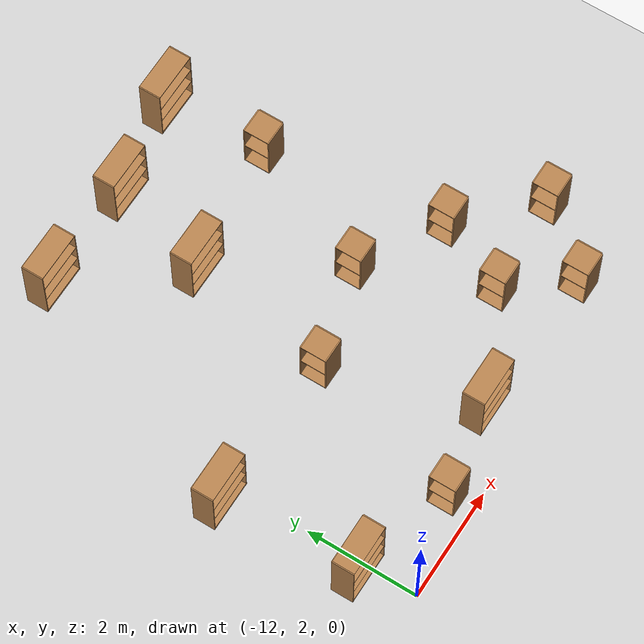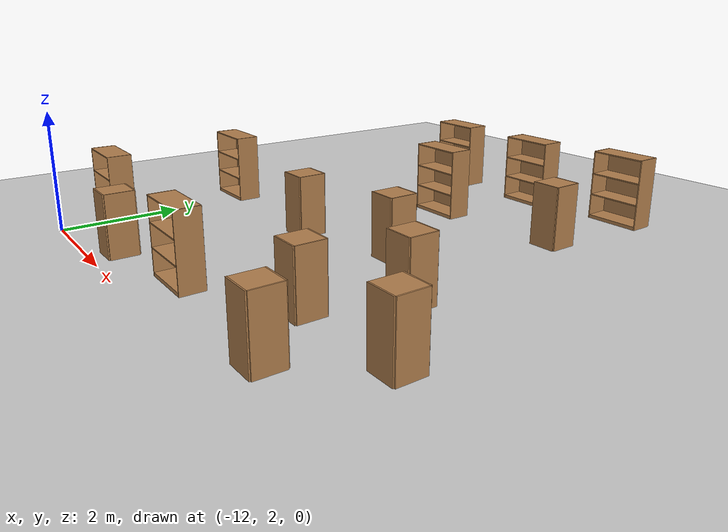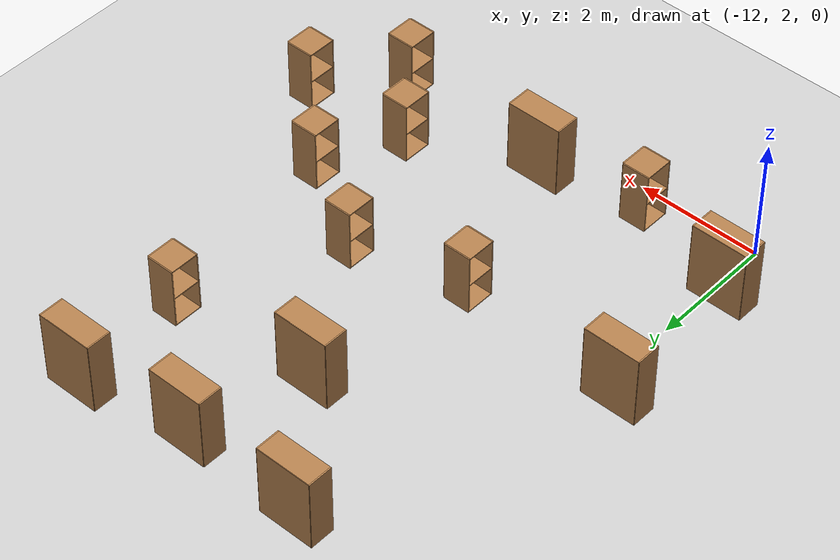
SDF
<sdf version="1.6">
 <world name="default">
  <model name="ground_plane">
   <static>1</static>
   <link name="link">
    <collision name="collision">
     <geometry><plane><normal>0 0 1</normal><size>100 100</size></plane></geometry>
     <surface><friction><ode><mu>100</mu><mu2>50</mu2></ode></friction></surface>
    </collision>
    <visual name="visual">
     <cast_shadows>0</cast_shadows>
     <geometry><plane><normal>0 0 1</normal><size>100 100</size></plane></geometry>
     <material>
      <script><uri>file://media/materials/scripts/gazebo.material</uri><name>Gazebo/Grey</name></script>
     </material>
    </visual>
   </link>
  </model>
  <model name="bookshelf">
   <static>1</static>
   <link name="link">
    <inertial><mass>1</mass></inertial>
    <collision name="back">
     <pose>0 0.005 0.6 0 -0 0</pose>
     <geometry><box><size>0.9 0.01 1.2</size></box></geometry>
    </collision>
    <visual name="visual1">
     <pose>0 0.005 0.6 0 -0 0</pose>
     <geometry><box><size>0.9 0.01 1.2</size></box></geometry>
     <material>
      <script><uri>file://media/materials/scripts/gazebo.material</uri><name>Gazebo/Wood</name></script>
     </material>
    </visual>
    <collision name="left_side">
     <pose>0.45 -0.195 0.6 0 -0 0</pose>
     <geometry><box><size>0.02 0.4 1.2</size></box></geometry>
    </collision>
    <visual name="visual2">
     <pose>0.45 -0.195 0.6 0 -0 0</pose>
     <geometry><box><size>0.02 0.4 1.2</size></box></geometry>
     <material>
      <script><uri>file://media/materials/scripts/gazebo.material</uri><name>Gazebo/Wood</name></script>
     </material>
    </visual>
    <collision name="right_side">
     <pose>-0.45 -0.195 0.6 0 -0 0</pose>
     <geometry><box><size>0.02 0.4 1.2</size></box></geometry>
    </collision>
    <visual name="visual3">
     <pose>-0.45 -0.195 0.6 0 -0 0</pose>
     <geometry><box><size>0.02 0.4 1.2</size></box></geometry>
     <material>
      <script><uri>file://media/materials/scripts/gazebo.material</uri><name>Gazebo/Wood</name></script>
     </material>
    </visual>
    <collision name="bottom">
     <pose>0 -0.195 0.03 0 -0 0</pose>
     <geometry><box><size>0.88 0.4 0.06</size></box></geometry>
    </collision>
    <visual name="visual4">
     <pose>0 -0.195 0.03 0 -0 0</pose>
     <geometry><box><size>0.88 0.4 0.06</size></box></geometry>
     <material>
      <script><uri>file://media/materials/scripts/gazebo.material</uri><name>Gazebo/Wood</name></script>
     </material>
    </visual>
    <collision name="top">
     <pose>0 -0.195 1.19 0 -0 0</pose>
     <geometry><box><size>0.88 0.4 0.02</size></box></geometry>
    </collision>
    <visual name="visual5">
     <pose>0 -0.195 1.19 0 -0 0</pose>
     <geometry><box><size>0.88 0.4 0.02</size></box></geometry>
     <material>
      <script><uri>file://media/materials/scripts/gazebo.material</uri><name>Gazebo/Wood</name></script>
     </material>
    </visual>
    <collision name="low_shelf">
     <pose>0 -0.195 0.43 0 -0 0</pose>
     <geometry><box><size>0.88 0.4 0.02</size></box></geometry>
    </collision>
    <visual name="visual6">
     <pose>0 -0.195 0.43 0 -0 0</pose>
     <geometry><box><size>0.88 0.4 0.02</size></box></geometry>
     <material>
      <script><uri>file://media/materials/scripts/gazebo.material</uri><name>Gazebo/Wood</name></script>
     </material>
    </visual>
    <collision name="high_shelf">
     <pose>0 -0.195 0.8 0 -0 0</pose>
     <geometry><box><size>0.88 0.4 0.02</size></box></geometry>
    </collision>
    <visual name="visual7">
     <pose>0 -0.195 0.8 0 -0 0</pose>
     <geometry><box><size>0.88 0.4 0.02</size></box></geometry>
     <material>
      <script><uri>file://media/materials/scripts/gazebo.material</uri><name>Gazebo/Wood</name></script>
     </material>
    </visual>
   </link>
   <pose>-10.5831 9.95635 0 0 -0 0</pose>
  </model>
  <model name="bookshelf_0">
   <static>1</static>
   <link name="link">
    <inertial><mass>1</mass></inertial>
    <collision name="back">
     <pose>0 0.005 0.6 0 -0 0</pose>
     <geometry><box><size>0.9 0.01 1.2</size></box></geometry>
    </collision>
    <visual name="visual1">
     <pose>0 0.005 0.6 0 -0 0</pose>
     <geometry><box><size>0.9 0.01 1.2</size></box></geometry>
     <material>
      <script><uri>file://media/materials/scripts/gazebo.material</uri><name>Gazebo/Wood</name></script>
     </material>
    </visual>
    <collision name="left_side">
     <pose>0.45 -0.195 0.6 0 -0 0</pose>
     <geometry><box><size>0.02 0.4 1.2</size></box></geometry>
    </collision>
    <visual name="visual2">
     <pose>0.45 -0.195 0.6 0 -0 0</pose>
     <geometry><box><size>0.02 0.4 1.2</size></box></geometry>
     <material>
      <script><uri>file://media/materials/scripts/gazebo.material</uri><name>Gazebo/Wood</name></script>
     </material>
    </visual>
    <collision name="right_side">
     <pose>-0.45 -0.195 0.6 0 -0 0</pose>
     <geometry><box><size>0.02 0.4 1.2</size></box></geometry>
    </collision>
    <visual name="visual3">
     <pose>-0.45 -0.195 0.6 0 -0 0</pose>
     <geometry><box><size>0.02 0.4 1.2</size></box></geometry>
     <material>
      <script><uri>file://media/materials/scripts/gazebo.material</uri><name>Gazebo/Wood</name></script>
     </material>
    </visual>
    <collision name="bottom">
     <pose>0 -0.195 0.03 0 -0 0</pose>
     <geometry><box><size>0.88 0.4 0.06</size></box></geometry>
    </collision>
    <visual name="visual4">
     <pose>0 -0.195 0.03 0 -0 0</pose>
     <geometry><box><size>0.88 0.4 0.06</size></box></geometry>
     <material>
      <script><uri>file://media/materials/scripts/gazebo.material</uri><name>Gazebo/Wood</name></script>
     </material>
    </visual>
    <collision name="top">
     <pose>0 -0.195 1.19 0 -0 0</pose>
     <geometry><box><size>0.88 0.4 0.02</size></box></geometry>
    </collision>
    <visual name="visual5">
     <pose>0 -0.195 1.19 0 -0 0</pose>
     <geometry><box><size>0.88 0.4 0.02</size></box></geometry>
     <material>
      <script><uri>file://media/materials/scripts/gazebo.material</uri><name>Gazebo/Wood</name></script>
     </material>
    </visual>
    <collision name="low_shelf">
     <pose>0 -0.195 0.43 0 -0 0</pose>
     <geometry><box><size>0.88 0.4 0.02</size></box></geometry>
    </collision>
    <visual name="visual6">
     <pose>0 -0.195 0.43 0 -0 0</pose>
     <geometry><box><size>0.88 0.4 0.02</size></box></geometry>
     <material>
      <script><uri>file://media/materials/scripts/gazebo.material</uri><name>Gazebo/Wood</name></script>
     </material>
    </visual>
    <collision name="high_shelf">
     <pose>0 -0.195 0.8 0 -0 0</pose>
     <geometry><box><size>0.88 0.4 0.02</size></box></geometry>
    </collision>
    <visual name="visual7">
     <pose>0 -0.195 0.8 0 -0 0</pose>
     <geometry><box><size>0.88 0.4 0.02</size></box></geometry>
     <material>
      <script><uri>file://media/materials/scripts/gazebo.material</uri><name>Gazebo/Wood</name></script>
     </material>
    </visual>
   </link>
   <pose>-8.62976 9.91802 0 0 -0 0</pose>
  </model>
  <model name="bookshelf_2">
   <static>1</static>
   <link name="link">
    <inertial><mass>1</mass></inertial>
    <collision name="back">
     <pose>0 0.005 0.6 0 -0 0</pose>
     <geometry><box><size>0.9 0.01 1.2</size></box></geometry>
    </collision>
    <visual name="visual1">
     <pose>0 0.005 0.6 0 -0 0</pose>
     <geometry><box><size>0.9 0.01 1.2</size></box></geometry>
     <material>
      <script><uri>file://media/materials/scripts/gazebo.material</uri><name>Gazebo/Wood</name></script>
     </material>
    </visual>
    <collision name="left_side">
     <pose>0.45 -0.195 0.6 0 -0 0</pose>
     <geometry><box><size>0.02 0.4 1.2</size></box></geometry>
    </collision>
    <visual name="visual2">
     <pose>0.45 -0.195 0.6 0 -0 0</pose>
     <geometry><box><size>0.02 0.4 1.2</size></box></geometry>
     <material>
      <script><uri>file://media/materials/scripts/gazebo.material</uri><name>Gazebo/Wood</name></script>
     </material>
    </visual>
    <collision name="right_side">
     <pose>-0.45 -0.195 0.6 0 -0 0</pose>
     <geometry><box><size>0.02 0.4 1.2</size></box></geometry>
    </collision>
    <visual name="visual3">
     <pose>-0.45 -0.195 0.6 0 -0 0</pose>
     <geometry><box><size>0.02 0.4 1.2</size></box></geometry>
     <material>
      <script><uri>file://media/materials/scripts/gazebo.material</uri><name>Gazebo/Wood</name></script>
     </material>
    </visual>
    <collision name="bottom">
     <pose>0 -0.195 0.03 0 -0 0</pose>
     <geometry><box><size>0.88 0.4 0.06</size></box></geometry>
    </collision>
    <visual name="visual4">
     <pose>0 -0.195 0.03 0 -0 0</pose>
     <geometry><box><size>0.88 0.4 0.06</size></box></geometry>
     <material>
      <script><uri>file://media/materials/scripts/gazebo.material</uri><name>Gazebo/Wood</name></script>
     </material>
    </visual>
    <collision name="top">
     <pose>0 -0.195 1.19 0 -0 0</pose>
     <geometry><box><size>0.88 0.4 0.02</size></box></geometry>
    </collision>
    <visual name="visual5">
     <pose>0 -0.195 1.19 0 -0 0</pose>
     <geometry><box><size>0.88 0.4 0.02</size></box></geometry>
     <material>
      <script><uri>file://media/materials/scripts/gazebo.material</uri><name>Gazebo/Wood</name></script>
     </material>
    </visual>
    <collision name="low_shelf">
     <pose>0 -0.195 0.43 0 -0 0</pose>
     <geometry><box><size>0.88 0.4 0.02</size></box></geometry>
    </collision>
    <visual name="visual6">
     <pose>0 -0.195 0.43 0 -0 0</pose>
     <geometry><box><size>0.88 0.4 0.02</size></box></geometry>
     <material>
      <script><uri>file://media/materials/scripts/gazebo.material</uri><name>Gazebo/Wood</name></script>
     </material>
    </visual>
    <collision name="high_shelf">
     <pose>0 -0.195 0.8 0 -0 0</pose>
     <geometry><box><size>0.88 0.4 0.02</size></box></geometry>
    </collision>
    <visual name="visual7">
     <pose>0 -0.195 0.8 0 -0 0</pose>
     <geometry><box><size>0.88 0.4 0.02</size></box></geometry>
     <material>
      <script><uri>file://media/materials/scripts/gazebo.material</uri><name>Gazebo/Wood</name></script>
     </material>
    </visual>
   </link>
   <pose>-6.87508 10.1974 0 0 -0 0</pose>
  </model>
  <model name="bookshelf_8">
   <static>1</static>
   <link name="link">
    <inertial><mass>1</mass></inertial>
    <collision name="back">
     <pose>0 0.005 0.6 0 -0 0</pose>
     <geometry><box><size>0.9 0.01 1.2</size></box></geometry>
    </collision>
    <visual name="visual1">
     <pose>0 0.005 0.6 0 -0 0</pose>
     <geometry><box><size>0.9 0.01 1.2</size></box></geometry>
     <material>
      <script><uri>file://media/materials/scripts/gazebo.material</uri><name>Gazebo/Wood</name></script>
     </material>
    </visual>
    <collision name="left_side">
     <pose>0.45 -0.195 0.6 0 -0 0</pose>
     <geometry><box><size>0.02 0.4 1.2</size></box></geometry>
    </collision>
    <visual name="visual2">
     <pose>0.45 -0.195 0.6 0 -0 0</pose>
     <geometry><box><size>0.02 0.4 1.2</size></box></geometry>
     <material>
      <script><uri>file://media/materials/scripts/gazebo.material</uri><name>Gazebo/Wood</name></script>
     </material>
    </visual>
    <collision name="right_side">
     <pose>-0.45 -0.195 0.6 0 -0 0</pose>
     <geometry><box><size>0.02 0.4 1.2</size></box></geometry>
    </collision>
    <visual name="visual3">
     <pose>-0.45 -0.195 0.6 0 -0 0</pose>
     <geometry><box><size>0.02 0.4 1.2</size></box></geometry>
     <material>
      <script><uri>file://media/materials/scripts/gazebo.material</uri><name>Gazebo/Wood</name></script>
     </material>
    </visual>
    <collision name="bottom">
     <pose>0 -0.195 0.03 0 -0 0</pose>
     <geometry><box><size>0.88 0.4 0.06</size></box></geometry>
    </collision>
    <visual name="visual4">
     <pose>0 -0.195 0.03 0 -0 0</pose>
     <geometry><box><size>0.88 0.4 0.06</size></box></geometry>
     <material>
      <script><uri>file://media/materials/scripts/gazebo.material</uri><name>Gazebo/Wood</name></script>
     </material>
    </visual>
    <collision name="top">
     <pose>0 -0.195 1.19 0 -0 0</pose>
     <geometry><box><size>0.88 0.4 0.02</size></box></geometry>
    </collision>
    <visual name="visual5">
     <pose>0 -0.195 1.19 0 -0 0</pose>
     <geometry><box><size>0.88 0.4 0.02</size></box></geometry>
     <material>
      <script><uri>file://media/materials/scripts/gazebo.material</uri><name>Gazebo/Wood</name></script>
     </material>
    </visual>
    <collision name="low_shelf">
     <pose>0 -0.195 0.43 0 -0 0</pose>
     <geometry><box><size>0.88 0.4 0.02</size></box></geometry>
    </collision>
    <visual name="visual6">
     <pose>0 -0.195 0.43 0 -0 0</pose>
     <geometry><box><size>0.88 0.4 0.02</size></box></geometry>
     <material>
      <script><uri>file://media/materials/scripts/gazebo.material</uri><name>Gazebo/Wood</name></script>
     </material>
    </visual>
    <collision name="high_shelf">
     <pose>0 -0.195 0.8 0 -0 0</pose>
     <geometry><box><size>0.88 0.4 0.02</size></box></geometry>
    </collision>
    <visual name="visual7">
     <pose>0 -0.195 0.8 0 -0 0</pose>
     <geometry><box><size>0.88 0.4 0.02</size></box></geometry>
     <material>
      <script><uri>file://media/materials/scripts/gazebo.material</uri><name>Gazebo/Wood</name></script>
     </material>
    </visual>
   </link>
   <pose>-9.11498 8.11541 0 0 -0 0</pose>
  </model>
  <model name="cabinet_0">
   <static>1</static>
   <link name="cabinet_bottom_plate">
    <inertial>
     <pose>0 0 -1 0 -0 0</pose>
     <inertia><ixx>2.05</ixx><ixy>0</ixy><ixz>0</ixz><iyy>2.05</iyy><iyz>0</iyz><izz>2.05</izz></inertia>
     <mass>25</mass>
    </inertial>
    <collision name="cabinet_bottom_plate_geom">
     <pose>0 0 0.01 0 -0 0</pose>
     <geometry><box><size>0.45 0.45 0.02</size></box></geometry>
    </collision>
    <visual name="cabinet_bottom_plate_geom_visual">
     <pose>0 0 0.01 0 -0 0</pose>
     <geometry><box><size>0.45 0.45 0.02</size></box></geometry>
     <material>
      <script><uri>file://media/materials/scripts/gazebo.material</uri><name>Gazebo/Wood</name></script>
     </material>
    </visual>
    <collision name="cabinet_bottom_plate_geom_cabinet_back_plate">
     <pose>0.235 0 0.51 0 -0 0</pose>
     <geometry><box><size>0.02 0.45 1.02</size></box></geometry>
    </collision>
    <visual name="cabinet_bottom_plate_geom_cabinet_back_plate_visual">
     <pose>0.235 0 0.51 0 -0 0</pose>
     <geometry><box><size>0.02 0.45 1.02</size></box></geometry>
     <material>
      <script><uri>file://media/materials/scripts/gazebo.material</uri><name>Gazebo/Wood</name></script>
     </material>
    </visual>
    <collision name="cabinet_bottom_plate_geom_cabinet_left_plate">
     <pose>0 0.235 0.51 0 -0 0</pose>
     <geometry><box><size>0.45 0.02 1.02</size></box></geometry>
    </collision>
    <visual name="cabinet_bottom_plate_geom_cabinet_left_plate_visual">
     <pose>0 0.235 0.51 0 -0 0</pose>
     <geometry><box><size>0.45 0.02 1.02</size></box></geometry>
     <material>
      <script><uri>file://media/materials/scripts/gazebo.material</uri><name>Gazebo/Wood</name></script>
     </material>
    </visual>
    <collision name="cabinet_bottom_plate_geom_cabinet_middle_plate">
     <pose>0 0 0.51 0 -0 0</pose>
     <geometry><box><size>0.45 0.45 0.02</size></box></geometry>
    </collision>
    <visual name="cabinet_bottom_plate_geom_cabinet_middle_plate_visual">
     <pose>0 0 0.51 0 -0 0</pose>
     <geometry><box><size>0.45 0.45 0.02</size></box></geometry>
     <material>
      <script><uri>file://media/materials/scripts/gazebo.material</uri><name>Gazebo/Wood</name></script>
     </material>
    </visual>
    <collision name="cabinet_bottom_plate_geom_cabinet_right_plate">
     <pose>0 -0.235 0.51 0 -0 0</pose>
     <geometry><box><size>0.45 0.02 1.02</size></box></geometry>
    </collision>
    <visual name="cabinet_bottom_plate_geom_cabinet_right_plate_visual">
     <pose>0 -0.235 0.51 0 -0 0</pose>
     <geometry><box><size>0.45 0.02 1.02</size></box></geometry>
     <material>
      <script><uri>file://media/materials/scripts/gazebo.material</uri><name>Gazebo/Wood</name></script>
     </material>
    </visual>
    <collision name="cabinet_bottom_plate_geom_cabinet_top_plate">
     <pose>0 0 1.01 0 -0 0</pose>
     <geometry><box><size>0.45 0.45 0.02</size></box></geometry>
    </collision>
    <visual name="cabinet_bottom_plate_geom_cabinet_top_plate_visual">
     <pose>0 0 1.01 0 -0 0</pose>
     <geometry><box><size>0.45 0.45 0.02</size></box></geometry>
     <material>
      <script><uri>file://media/materials/scripts/gazebo.material</uri><name>Gazebo/Wood</name></script>
     </material>
    </visual>
   </link>
   <pose>-6.78646 8.15302 0 0 -0 0</pose>
  </model>
  <model name="bookshelf_17">
   <static>1</static>
   <link name="link">
    <inertial><mass>1</mass></inertial>
    <collision name="back">
     <pose>0 0.005 0.6 0 -0 0</pose>
     <geometry><box><size>0.9 0.01 1.2</size></box></geometry>
    </collision>
    <visual name="visual1">
     <pose>0 0.005 0.6 0 -0 0</pose>
     <geometry><box><size>0.9 0.01 1.2</size></box></geometry>
     <material>
      <script><uri>file://media/materials/scripts/gazebo.material</uri><name>Gazebo/Wood</name></script>
     </material>
    </visual>
    <collision name="left_side">
     <pose>0.45 -0.195 0.6 0 -0 0</pose>
     <geometry><box><size>0.02 0.4 1.2</size></box></geometry>
    </collision>
    <visual name="visual2">
     <pose>0.45 -0.195 0.6 0 -0 0</pose>
     <geometry><box><size>0.02 0.4 1.2</size></box></geometry>
     <material>
      <script><uri>file://media/materials/scripts/gazebo.material</uri><name>Gazebo/Wood</name></script>
     </material>
    </visual>
    <collision name="right_side">
     <pose>-0.45 -0.195 0.6 0 -0 0</pose>
     <geometry><box><size>0.02 0.4 1.2</size></box></geometry>
    </collision>
    <visual name="visual3">
     <pose>-0.45 -0.195 0.6 0 -0 0</pose>
     <geometry><box><size>0.02 0.4 1.2</size></box></geometry>
     <material>
      <script><uri>file://media/materials/scripts/gazebo.material</uri><name>Gazebo/Wood</name></script>
     </material>
    </visual>
    <collision name="bottom">
     <pose>0 -0.195 0.03 0 -0 0</pose>
     <geometry><box><size>0.88 0.4 0.06</size></box></geometry>
    </collision>
    <visual name="visual4">
     <pose>0 -0.195 0.03 0 -0 0</pose>
     <geometry><box><size>0.88 0.4 0.06</size></box></geometry>
     <material>
      <script><uri>file://media/materials/scripts/gazebo.material</uri><name>Gazebo/Wood</name></script>
     </material>
    </visual>
    <collision name="top">
     <pose>0 -0.195 1.19 0 -0 0</pose>
     <geometry><box><size>0.88 0.4 0.02</size></box></geometry>
    </collision>
    <visual name="visual5">
     <pose>0 -0.195 1.19 0 -0 0</pose>
     <geometry><box><size>0.88 0.4 0.02</size></box></geometry>
     <material>
      <script><uri>file://media/materials/scripts/gazebo.material</uri><name>Gazebo/Wood</name></script>
     </material>
    </visual>
    <collision name="low_shelf">
     <pose>0 -0.195 0.43 0 -0 0</pose>
     <geometry><box><size>0.88 0.4 0.02</size></box></geometry>
    </collision>
    <visual name="visual6">
     <pose>0 -0.195 0.43 0 -0 0</pose>
     <geometry><box><size>0.88 0.4 0.02</size></box></geometry>
     <material>
      <script><uri>file://media/materials/scripts/gazebo.material</uri><name>Gazebo/Wood</name></script>
     </material>
    </visual>
    <collision name="high_shelf">
     <pose>0 -0.195 0.8 0 -0 0</pose>
     <geometry><box><size>0.88 0.4 0.02</size></box></geometry>
    </collision>
    <visual name="visual7">
     <pose>0 -0.195 0.8 0 -0 0</pose>
     <geometry><box><size>0.88 0.4 0.02</size></box></geometry>
     <material>
      <script><uri>file://media/materials/scripts/gazebo.material</uri><name>Gazebo/Wood</name></script>
     </material>
    </visual>
   </link>
   <pose>-12.2963 5.6296 0 0 -0 0</pose>
  </model>
  <model name="bookshelf_18">
   <static>1</static>
   <link name="link">
    <inertial><mass>1</mass></inertial>
    <collision name="back">
     <pose>0 0.005 0.6 0 -0 0</pose>
     <geometry><box><size>0.9 0.01 1.2</size></box></geometry>
    </collision>
    <visual name="visual1">
     <pose>0 0.005 0.6 0 -0 0</pose>
     <geometry><box><size>0.9 0.01 1.2</size></box></geometry>
     <material>
      <script><uri>file://media/materials/scripts/gazebo.material</uri><name>Gazebo/Wood</name></script>
     </material>
    </visual>
    <collision name="left_side">
     <pose>0.45 -0.195 0.6 0 -0 0</pose>
     <geometry><box><size>0.02 0.4 1.2</size></box></geometry>
    </collision>
    <visual name="visual2">
     <pose>0.45 -0.195 0.6 0 -0 0</pose>
     <geometry><box><size>0.02 0.4 1.2</size></box></geometry>
     <material>
      <script><uri>file://media/materials/scripts/gazebo.material</uri><name>Gazebo/Wood</name></script>
     </material>
    </visual>
    <collision name="right_side">
     <pose>-0.45 -0.195 0.6 0 -0 0</pose>
     <geometry><box><size>0.02 0.4 1.2</size></box></geometry>
    </collision>
    <visual name="visual3">
     <pose>-0.45 -0.195 0.6 0 -0 0</pose>
     <geometry><box><size>0.02 0.4 1.2</size></box></geometry>
     <material>
      <script><uri>file://media/materials/scripts/gazebo.material</uri><name>Gazebo/Wood</name></script>
     </material>
    </visual>
    <collision name="bottom">
     <pose>0 -0.195 0.03 0 -0 0</pose>
     <geometry><box><size>0.88 0.4 0.06</size></box></geometry>
    </collision>
    <visual name="visual4">
     <pose>0 -0.195 0.03 0 -0 0</pose>
     <geometry><box><size>0.88 0.4 0.06</size></box></geometry>
     <material>
      <script><uri>file://media/materials/scripts/gazebo.material</uri><name>Gazebo/Wood</name></script>
     </material>
    </visual>
    <collision name="top">
     <pose>0 -0.195 1.19 0 -0 0</pose>
     <geometry><box><size>0.88 0.4 0.02</size></box></geometry>
    </collision>
    <visual name="visual5">
     <pose>0 -0.195 1.19 0 -0 0</pose>
     <geometry><box><size>0.88 0.4 0.02</size></box></geometry>
     <material>
      <script><uri>file://media/materials/scripts/gazebo.material</uri><name>Gazebo/Wood</name></script>
     </material>
    </visual>
    <collision name="low_shelf">
     <pose>0 -0.195 0.43 0 -0 0</pose>
     <geometry><box><size>0.88 0.4 0.02</size></box></geometry>
    </collision>
    <visual name="visual6">
     <pose>0 -0.195 0.43 0 -0 0</pose>
     <geometry><box><size>0.88 0.4 0.02</size></box></geometry>
     <material>
      <script><uri>file://media/materials/scripts/gazebo.material</uri><name>Gazebo/Wood</name></script>
     </material>
    </visual>
    <collision name="high_shelf">
     <pose>0 -0.195 0.8 0 -0 0</pose>
     <geometry><box><size>0.88 0.4 0.02</size></box></geometry>
    </collision>
    <visual name="visual7">
     <pose>0 -0.195 0.8 0 -0 0</pose>
     <geometry><box><size>0.88 0.4 0.02</size></box></geometry>
     <material>
      <script><uri>file://media/materials/scripts/gazebo.material</uri><name>Gazebo/Wood</name></script>
     </material>
    </visual>
   </link>
   <pose>-12.1596 3.17661 0 0 -0 0</pose>
  </model>
  <model name="cabinet_13">
   <static>1</static>
   <link name="cabinet_bottom_plate">
    <inertial>
     <pose>0 0 -1 0 -0 0</pose>
     <inertia><ixx>2.05</ixx><ixy>0</ixy><ixz>0</ixz><iyy>2.05</iyy><iyz>0</iyz><izz>2.05</izz></inertia>
     <mass>25</mass>
    </inertial>
    <collision name="cabinet_bottom_plate_geom">
     <pose>0 0 0.01 0 -0 0</pose>
     <geometry><box><size>0.45 0.45 0.02</size></box></geometry>
    </collision>
    <visual name="cabinet_bottom_plate_geom_visual">
     <pose>0 0 0.01 0 -0 0</pose>
     <geometry><box><size>0.45 0.45 0.02</size></box></geometry>
     <material>
      <script><uri>file://media/materials/scripts/gazebo.material</uri><name>Gazebo/Wood</name></script>
     </material>
    </visual>
    <collision name="cabinet_bottom_plate_geom_cabinet_back_plate">
     <pose>0.235 0 0.51 0 -0 0</pose>
     <geometry><box><size>0.02 0.45 1.02</size></box></geometry>
    </collision>
    <visual name="cabinet_bottom_plate_geom_cabinet_back_plate_visual">
     <pose>0.235 0 0.51 0 -0 0</pose>
     <geometry><box><size>0.02 0.45 1.02</size></box></geometry>
     <material>
      <script><uri>file://media/materials/scripts/gazebo.material</uri><name>Gazebo/Wood</name></script>
     </material>
    </visual>
    <collision name="cabinet_bottom_plate_geom_cabinet_left_plate">
     <pose>0 0.235 0.51 0 -0 0</pose>
     <geometry><box><size>0.45 0.02 1.02</size></box></geometry>
    </collision>
    <visual name="cabinet_bottom_plate_geom_cabinet_left_plate_visual">
     <pose>0 0.235 0.51 0 -0 0</pose>
     <geometry><box><size>0.45 0.02 1.02</size></box></geometry>
     <material>
      <script><uri>file://media/materials/scripts/gazebo.material</uri><name>Gazebo/Wood</name></script>
     </material>
    </visual>
    <collision name="cabinet_bottom_plate_geom_cabinet_middle_plate">
     <pose>0 0 0.51 0 -0 0</pose>
     <geometry><box><size>0.45 0.45 0.02</size></box></geometry>
    </collision>
    <visual name="cabinet_bottom_plate_geom_cabinet_middle_plate_visual">
     <pose>0 0 0.51 0 -0 0</pose>
     <geometry><box><size>0.45 0.45 0.02</size></box></geometry>
     <material>
      <script><uri>file://media/materials/scripts/gazebo.material</uri><name>Gazebo/Wood</name></script>
     </material>
    </visual>
    <collision name="cabinet_bottom_plate_geom_cabinet_right_plate">
     <pose>0 -0.235 0.51 0 -0 0</pose>
     <geometry><box><size>0.45 0.02 1.02</size></box></geometry>
    </collision>
    <visual name="cabinet_bottom_plate_geom_cabinet_right_plate_visual">
     <pose>0 -0.235 0.51 0 -0 0</pose>
     <geometry><box><size>0.45 0.02 1.02</size></box></geometry>
     <material>
      <script><uri>file://media/materials/scripts/gazebo.material</uri><name>Gazebo/Wood</name></script>
     </material>
    </visual>
    <collision name="cabinet_bottom_plate_geom_cabinet_top_plate">
     <pose>0 0 1.01 0 -0 0</pose>
     <geometry><box><size>0.45 0.45 0.02</size></box></geometry>
    </collision>
    <visual name="cabinet_bottom_plate_geom_cabinet_top_plate_visual">
     <pose>0 0 1.01 0 -0 0</pose>
     <geometry><box><size>0.45 0.45 0.02</size></box></geometry>
     <material>
      <script><uri>file://media/materials/scripts/gazebo.material</uri><name>Gazebo/Wood</name></script>
     </material>
    </visual>
   </link>
   <pose>-10.3499 2.45666 0 0 -0 0</pose>
  </model>
  <model name="cabinet_15">
   <static>1</static>
   <link name="cabinet_bottom_plate">
    <inertial>
     <pose>0 0 -1 0 -0 0</pose>
     <inertia><ixx>2.05</ixx><ixy>0</ixy><ixz>0</ixz><iyy>2.05</iyy><iyz>0</iyz><izz>2.05</izz></inertia>
     <mass>25</mass>
    </inertial>
    <collision name="cabinet_bottom_plate_geom">
     <pose>0 0 0.01 0 -0 0</pose>
     <geometry><box><size>0.45 0.45 0.02</size></box></geometry>
    </collision>
    <visual name="cabinet_bottom_plate_geom_visual">
     <pose>0 0 0.01 0 -0 0</pose>
     <geometry><box><size>0.45 0.45 0.02</size></box></geometry>
     <material>
      <script><uri>file://media/materials/scripts/gazebo.material</uri><name>Gazebo/Wood</name></script>
     </material>
    </visual>
    <collision name="cabinet_bottom_plate_geom_cabinet_back_plate">
     <pose>0.235 0 0.51 0 -0 0</pose>
     <geometry><box><size>0.02 0.45 1.02</size></box></geometry>
    </collision>
    <visual name="cabinet_bottom_plate_geom_cabinet_back_plate_visual">
     <pose>0.235 0 0.51 0 -0 0</pose>
     <geometry><box><size>0.02 0.45 1.02</size></box></geometry>
     <material>
      <script><uri>file://media/materials/scripts/gazebo.material</uri><name>Gazebo/Wood</name></script>
     </material>
    </visual>
    <collision name="cabinet_bottom_plate_geom_cabinet_left_plate">
     <pose>0 0.235 0.51 0 -0 0</pose>
     <geometry><box><size>0.45 0.02 1.02</size></box></geometry>
    </collision>
    <visual name="cabinet_bottom_plate_geom_cabinet_left_plate_visual">
     <pose>0 0.235 0.51 0 -0 0</pose>
     <geometry><box><size>0.45 0.02 1.02</size></box></geometry>
     <material>
      <script><uri>file://media/materials/scripts/gazebo.material</uri><name>Gazebo/Wood</name></script>
     </material>
    </visual>
    <collision name="cabinet_bottom_plate_geom_cabinet_middle_plate">
     <pose>0 0 0.51 0 -0 0</pose>
     <geometry><box><size>0.45 0.45 0.02</size></box></geometry>
    </collision>
    <visual name="cabinet_bottom_plate_geom_cabinet_middle_plate_visual">
     <pose>0 0 0.51 0 -0 0</pose>
     <geometry><box><size>0.45 0.45 0.02</size></box></geometry>
     <material>
      <script><uri>file://media/materials/scripts/gazebo.material</uri><name>Gazebo/Wood</name></script>
     </material>
    </visual>
    <collision name="cabinet_bottom_plate_geom_cabinet_right_plate">
     <pose>0 -0.235 0.51 0 -0 0</pose>
     <geometry><box><size>0.45 0.02 1.02</size></box></geometry>
    </collision>
    <visual name="cabinet_bottom_plate_geom_cabinet_right_plate_visual">
     <pose>0 -0.235 0.51 0 -0 0</pose>
     <geometry><box><size>0.45 0.02 1.02</size></box></geometry>
     <material>
      <script><uri>file://media/materials/scripts/gazebo.material</uri><name>Gazebo/Wood</name></script>
     </material>
    </visual>
    <collision name="cabinet_bottom_plate_geom_cabinet_top_plate">
     <pose>0 0 1.01 0 -0 0</pose>
     <geometry><box><size>0.45 0.45 0.02</size></box></geometry>
    </collision>
    <visual name="cabinet_bottom_plate_geom_cabinet_top_plate_visual">
     <pose>0 0 1.01 0 -0 0</pose>
     <geometry><box><size>0.45 0.45 0.02</size></box></geometry>
     <material>
      <script><uri>file://media/materials/scripts/gazebo.material</uri><name>Gazebo/Wood</name></script>
     </material>
    </visual>
   </link>
   <pose>-9.56492 5.30335 0 0 -0 0</pose>
  </model>
  <model name="bookshelf_25">
   <static>1</static>
   <link name="link">
    <inertial><mass>1</mass></inertial>
    <collision name="back">
     <pose>0 0.005 0.6 0 -0 0</pose>
     <geometry><box><size>0.9 0.01 1.2</size></box></geometry>
    </collision>
    <visual name="visual1">
     <pose>0 0.005 0.6 0 -0 0</pose>
     <geometry><box><size>0.9 0.01 1.2</size></box></geometry>
     <material>
      <script><uri>file://media/materials/scripts/gazebo.material</uri><name>Gazebo/Wood</name></script>
     </material>
    </visual>
    <collision name="left_side">
     <pose>0.45 -0.195 0.6 0 -0 0</pose>
     <geometry><box><size>0.02 0.4 1.2</size></box></geometry>
    </collision>
    <visual name="visual2">
     <pose>0.45 -0.195 0.6 0 -0 0</pose>
     <geometry><box><size>0.02 0.4 1.2</size></box></geometry>
     <material>
      <script><uri>file://media/materials/scripts/gazebo.material</uri><name>Gazebo/Wood</name></script>
     </material>
    </visual>
    <collision name="right_side">
     <pose>-0.45 -0.195 0.6 0 -0 0</pose>
     <geometry><box><size>0.02 0.4 1.2</size></box></geometry>
    </collision>
    <visual name="visual3">
     <pose>-0.45 -0.195 0.6 0 -0 0</pose>
     <geometry><box><size>0.02 0.4 1.2</size></box></geometry>
     <material>
      <script><uri>file://media/materials/scripts/gazebo.material</uri><name>Gazebo/Wood</name></script>
     </material>
    </visual>
    <collision name="bottom">
     <pose>0 -0.195 0.03 0 -0 0</pose>
     <geometry><box><size>0.88 0.4 0.06</size></box></geometry>
    </collision>
    <visual name="visual4">
     <pose>0 -0.195 0.03 0 -0 0</pose>
     <geometry><box><size>0.88 0.4 0.06</size></box></geometry>
     <material>
      <script><uri>file://media/materials/scripts/gazebo.material</uri><name>Gazebo/Wood</name></script>
     </material>
    </visual>
    <collision name="top">
     <pose>0 -0.195 1.19 0 -0 0</pose>
     <geometry><box><size>0.88 0.4 0.02</size></box></geometry>
    </collision>
    <visual name="visual5">
     <pose>0 -0.195 1.19 0 -0 0</pose>
     <geometry><box><size>0.88 0.4 0.02</size></box></geometry>
     <material>
      <script><uri>file://media/materials/scripts/gazebo.material</uri><name>Gazebo/Wood</name></script>
     </material>
    </visual>
    <collision name="low_shelf">
     <pose>0 -0.195 0.43 0 -0 0</pose>
     <geometry><box><size>0.88 0.4 0.02</size></box></geometry>
    </collision>
    <visual name="visual6">
     <pose>0 -0.195 0.43 0 -0 0</pose>
     <geometry><box><size>0.88 0.4 0.02</size></box></geometry>
     <material>
      <script><uri>file://media/materials/scripts/gazebo.material</uri><name>Gazebo/Wood</name></script>
     </material>
    </visual>
    <collision name="high_shelf">
     <pose>0 -0.195 0.8 0 -0 0</pose>
     <geometry><box><size>0.88 0.4 0.02</size></box></geometry>
    </collision>
    <visual name="visual7">
     <pose>0 -0.195 0.8 0 -0 0</pose>
     <geometry><box><size>0.88 0.4 0.02</size></box></geometry>
     <material>
      <script><uri>file://media/materials/scripts/gazebo.material</uri><name>Gazebo/Wood</name></script>
     </material>
    </visual>
   </link>
   <pose>-8.71163 2.94722 0 0 -0 0</pose>
  </model>
  <model name="cabinet_20">
   <static>1</static>
   <link name="cabinet_bottom_plate">
    <inertial>
     <pose>0 0 -1 0 -0 0</pose>
     <inertia><ixx>2.05</ixx><ixy>0</ixy><ixz>0</ixz><iyy>2.05</iyy><iyz>0</iyz><izz>2.05</izz></inertia>
     <mass>25</mass>
    </inertial>
    <collision name="cabinet_bottom_plate_geom">
     <pose>0 0 0.01 0 -0 0</pose>
     <geometry><box><size>0.45 0.45 0.02</size></box></geometry>
    </collision>
    <visual name="cabinet_bottom_plate_geom_visual">
     <pose>0 0 0.01 0 -0 0</pose>
     <geometry><box><size>0.45 0.45 0.02</size></box></geometry>
     <material>
      <script><uri>file://media/materials/scripts/gazebo.material</uri><name>Gazebo/Wood</name></script>
     </material>
    </visual>
    <collision name="cabinet_bottom_plate_geom_cabinet_back_plate">
     <pose>0.235 0 0.51 0 -0 0</pose>
     <geometry><box><size>0.02 0.45 1.02</size></box></geometry>
    </collision>
    <visual name="cabinet_bottom_plate_geom_cabinet_back_plate_visual">
     <pose>0.235 0 0.51 0 -0 0</pose>
     <geometry><box><size>0.02 0.45 1.02</size></box></geometry>
     <material>
      <script><uri>file://media/materials/scripts/gazebo.material</uri><name>Gazebo/Wood</name></script>
     </material>
    </visual>
    <collision name="cabinet_bottom_plate_geom_cabinet_left_plate">
     <pose>0 0.235 0.51 0 -0 0</pose>
     <geometry><box><size>0.45 0.02 1.02</size></box></geometry>
    </collision>
    <visual name="cabinet_bottom_plate_geom_cabinet_left_plate_visual">
     <pose>0 0.235 0.51 0 -0 0</pose>
     <geometry><box><size>0.45 0.02 1.02</size></box></geometry>
     <material>
      <script><uri>file://media/materials/scripts/gazebo.material</uri><name>Gazebo/Wood</name></script>
     </material>
    </visual>
    <collision name="cabinet_bottom_plate_geom_cabinet_middle_plate">
     <pose>0 0 0.51 0 -0 0</pose>
     <geometry><box><size>0.45 0.45 0.02</size></box></geometry>
    </collision>
    <visual name="cabinet_bottom_plate_geom_cabinet_middle_plate_visual">
     <pose>0 0 0.51 0 -0 0</pose>
     <geometry><box><size>0.45 0.45 0.02</size></box></geometry>
     <material>
      <script><uri>file://media/materials/scripts/gazebo.material</uri><name>Gazebo/Wood</name></script>
     </material>
    </visual>
    <collision name="cabinet_bottom_plate_geom_cabinet_right_plate">
     <pose>0 -0.235 0.51 0 -0 0</pose>
     <geometry><box><size>0.45 0.02 1.02</size></box></geometry>
    </collision>
    <visual name="cabinet_bottom_plate_geom_cabinet_right_plate_visual">
     <pose>0 -0.235 0.51 0 -0 0</pose>
     <geometry><box><size>0.45 0.02 1.02</size></box></geometry>
     <material>
      <script><uri>file://media/materials/scripts/gazebo.material</uri><name>Gazebo/Wood</name></script>
     </material>
    </visual>
    <collision name="cabinet_bottom_plate_geom_cabinet_top_plate">
     <pose>0 0 1.01 0 -0 0</pose>
     <geometry><box><size>0.45 0.45 0.02</size></box></geometry>
    </collision>
    <visual name="cabinet_bottom_plate_geom_cabinet_top_plate_visual">
     <pose>0 0 1.01 0 -0 0</pose>
     <geometry><box><size>0.45 0.45 0.02</size></box></geometry>
     <material>
      <script><uri>file://media/materials/scripts/gazebo.material</uri><name>Gazebo/Wood</name></script>
     </material>
    </visual>
   </link>
   <pose>-7.79155 5.7629 0 0 -0 0</pose>
  </model>
  <model name="cabinet_22">
   <static>1</static>
   <link name="cabinet_bottom_plate">
    <inertial>
     <pose>0 0 -1 0 -0 0</pose>
     <inertia><ixx>2.05</ixx><ixy>0</ixy><ixz>0</ixz><iyy>2.05</iyy><iyz>0</iyz><izz>2.05</izz></inertia>
     <mass>25</mass>
    </inertial>
    <collision name="cabinet_bottom_plate_geom">
     <pose>0 0 0.01 0 -0 0</pose>
     <geometry><box><size>0.45 0.45 0.02</size></box></geometry>
    </collision>
    <visual name="cabinet_bottom_plate_geom_visual">
     <pose>0 0 0.01 0 -0 0</pose>
     <geometry><box><size>0.45 0.45 0.02</size></box></geometry>
     <material>
      <script><uri>file://media/materials/scripts/gazebo.material</uri><name>Gazebo/Wood</name></script>
     </material>
    </visual>
    <collision name="cabinet_bottom_plate_geom_cabinet_back_plate">
     <pose>0.235 0 0.51 0 -0 0</pose>
     <geometry><box><size>0.02 0.45 1.02</size></box></geometry>
    </collision>
    <visual name="cabinet_bottom_plate_geom_cabinet_back_plate_visual">
     <pose>0.235 0 0.51 0 -0 0</pose>
     <geometry><box><size>0.02 0.45 1.02</size></box></geometry>
     <material>
      <script><uri>file://media/materials/scripts/gazebo.material</uri><name>Gazebo/Wood</name></script>
     </material>
    </visual>
    <collision name="cabinet_bottom_plate_geom_cabinet_left_plate">
     <pose>0 0.235 0.51 0 -0 0</pose>
     <geometry><box><size>0.45 0.02 1.02</size></box></geometry>
    </collision>
    <visual name="cabinet_bottom_plate_geom_cabinet_left_plate_visual">
     <pose>0 0.235 0.51 0 -0 0</pose>
     <geometry><box><size>0.45 0.02 1.02</size></box></geometry>
     <material>
      <script><uri>file://media/materials/scripts/gazebo.material</uri><name>Gazebo/Wood</name></script>
     </material>
    </visual>
    <collision name="cabinet_bottom_plate_geom_cabinet_middle_plate">
     <pose>0 0 0.51 0 -0 0</pose>
     <geometry><box><size>0.45 0.45 0.02</size></box></geometry>
    </collision>
    <visual name="cabinet_bottom_plate_geom_cabinet_middle_plate_visual">
     <pose>0 0 0.51 0 -0 0</pose>
     <geometry><box><size>0.45 0.45 0.02</size></box></geometry>
     <material>
      <script><uri>file://media/materials/scripts/gazebo.material</uri><name>Gazebo/Wood</name></script>
     </material>
    </visual>
    <collision name="cabinet_bottom_plate_geom_cabinet_right_plate">
     <pose>0 -0.235 0.51 0 -0 0</pose>
     <geometry><box><size>0.45 0.02 1.02</size></box></geometry>
    </collision>
    <visual name="cabinet_bottom_plate_geom_cabinet_right_plate_visual">
     <pose>0 -0.235 0.51 0 -0 0</pose>
     <geometry><box><size>0.45 0.02 1.02</size></box></geometry>
     <material>
      <script><uri>file://media/materials/scripts/gazebo.material</uri><name>Gazebo/Wood</name></script>
     </material>
    </visual>
    <collision name="cabinet_bottom_plate_geom_cabinet_top_plate">
     <pose>0 0 1.01 0 -0 0</pose>
     <geometry><box><size>0.45 0.45 0.02</size></box></geometry>
    </collision>
    <visual name="cabinet_bottom_plate_geom_cabinet_top_plate_visual">
     <pose>0 0 1.01 0 -0 0</pose>
     <geometry><box><size>0.45 0.45 0.02</size></box></geometry>
     <material>
      <script><uri>file://media/materials/scripts/gazebo.material</uri><name>Gazebo/Wood</name></script>
     </material>
    </visual>
   </link>
   <pose>-6.06757 2.58493 0 0 -0 0</pose>
  </model>
  <model name="cabinet_23">
   <static>1</static>
   <link name="cabinet_bottom_plate">
    <inertial>
     <pose>0 0 -1 0 -0 0</pose>
     <inertia><ixx>2.05</ixx><ixy>0</ixy><ixz>0</ixz><iyy>2.05</iyy><iyz>0</iyz><izz>2.05</izz></inertia>
     <mass>25</mass>
    </inertial>
    <collision name="cabinet_bottom_plate_geom">
     <pose>0 0 0.01 0 -0 0</pose>
     <geometry><box><size>0.45 0.45 0.02</size></box></geometry>
    </collision>
    <visual name="cabinet_bottom_plate_geom_visual">
     <pose>0 0 0.01 0 -0 0</pose>
     <geometry><box><size>0.45 0.45 0.02</size></box></geometry>
     <material>
      <script><uri>file://media/materials/scripts/gazebo.material</uri><name>Gazebo/Wood</name></script>
     </material>
    </visual>
    <collision name="cabinet_bottom_plate_geom_cabinet_back_plate">
     <pose>0.235 0 0.51 0 -0 0</pose>
     <geometry><box><size>0.02 0.45 1.02</size></box></geometry>
    </collision>
    <visual name="cabinet_bottom_plate_geom_cabinet_back_plate_visual">
     <pose>0.235 0 0.51 0 -0 0</pose>
     <geometry><box><size>0.02 0.45 1.02</size></box></geometry>
     <material>
      <script><uri>file://media/materials/scripts/gazebo.material</uri><name>Gazebo/Wood</name></script>
     </material>
    </visual>
    <collision name="cabinet_bottom_plate_geom_cabinet_left_plate">
     <pose>0 0.235 0.51 0 -0 0</pose>
     <geometry><box><size>0.45 0.02 1.02</size></box></geometry>
    </collision>
    <visual name="cabinet_bottom_plate_geom_cabinet_left_plate_visual">
     <pose>0 0.235 0.51 0 -0 0</pose>
     <geometry><box><size>0.45 0.02 1.02</size></box></geometry>
     <material>
      <script><uri>file://media/materials/scripts/gazebo.material</uri><name>Gazebo/Wood</name></script>
     </material>
    </visual>
    <collision name="cabinet_bottom_plate_geom_cabinet_middle_plate">
     <pose>0 0 0.51 0 -0 0</pose>
     <geometry><box><size>0.45 0.45 0.02</size></box></geometry>
    </collision>
    <visual name="cabinet_bottom_plate_geom_cabinet_middle_plate_visual">
     <pose>0 0 0.51 0 -0 0</pose>
     <geometry><box><size>0.45 0.45 0.02</size></box></geometry>
     <material>
      <script><uri>file://media/materials/scripts/gazebo.material</uri><name>Gazebo/Wood</name></script>
     </material>
    </visual>
    <collision name="cabinet_bottom_plate_geom_cabinet_right_plate">
     <pose>0 -0.235 0.51 0 -0 0</pose>
     <geometry><box><size>0.45 0.02 1.02</size></box></geometry>
    </collision>
    <visual name="cabinet_bottom_plate_geom_cabinet_right_plate_visual">
     <pose>0 -0.235 0.51 0 -0 0</pose>
     <geometry><box><size>0.45 0.02 1.02</size></box></geometry>
     <material>
      <script><uri>file://media/materials/scripts/gazebo.material</uri><name>Gazebo/Wood</name></script>
     </material>
    </visual>
    <collision name="cabinet_bottom_plate_geom_cabinet_top_plate">
     <pose>0 0 1.01 0 -0 0</pose>
     <geometry><box><size>0.45 0.45 0.02</size></box></geometry>
    </collision>
    <visual name="cabinet_bottom_plate_geom_cabinet_top_plate_visual">
     <pose>0 0 1.01 0 -0 0</pose>
     <geometry><box><size>0.45 0.45 0.02</size></box></geometry>
     <material>
      <script><uri>file://media/materials/scripts/gazebo.material</uri><name>Gazebo/Wood</name></script>
     </material>
    </visual>
   </link>
   <pose>-6.89678 3.62189 0 0 -0 0</pose>
  </model>
  <model name="cabinet_24">
   <static>1</static>
   <link name="cabinet_bottom_plate">
    <inertial>
     <pose>0 0 -1 0 -0 0</pose>
     <inertia><ixx>2.05</ixx><ixy>0</ixy><ixz>0</ixz><iyy>2.05</iyy><iyz>0</iyz><izz>2.05</izz></inertia>
     <mass>25</mass>
    </inertial>
    <collision name="cabinet_bottom_plate_geom">
     <pose>0 0 0.01 0 -0 0</pose>
     <geometry><box><size>0.45 0.45 0.02</size></box></geometry>
    </collision>
    <visual name="cabinet_bottom_plate_geom_visual">
     <pose>0 0 0.01 0 -0 0</pose>
     <geometry><box><size>0.45 0.45 0.02</size></box></geometry>
     <material>
      <script><uri>file://media/materials/scripts/gazebo.material</uri><name>Gazebo/Wood</name></script>
     </material>
    </visual>
    <collision name="cabinet_bottom_plate_geom_cabinet_back_plate">
     <pose>0.235 0 0.51 0 -0 0</pose>
     <geometry><box><size>0.02 0.45 1.02</size></box></geometry>
    </collision>
    <visual name="cabinet_bottom_plate_geom_cabinet_back_plate_visual">
     <pose>0.235 0 0.51 0 -0 0</pose>
     <geometry><box><size>0.02 0.45 1.02</size></box></geometry>
     <material>
      <script><uri>file://media/materials/scripts/gazebo.material</uri><name>Gazebo/Wood</name></script>
     </material>
    </visual>
    <collision name="cabinet_bottom_plate_geom_cabinet_left_plate">
     <pose>0 0.235 0.51 0 -0 0</pose>
     <geometry><box><size>0.45 0.02 1.02</size></box></geometry>
    </collision>
    <visual name="cabinet_bottom_plate_geom_cabinet_left_plate_visual">
     <pose>0 0.235 0.51 0 -0 0</pose>
     <geometry><box><size>0.45 0.02 1.02</size></box></geometry>
     <material>
      <script><uri>file://media/materials/scripts/gazebo.material</uri><name>Gazebo/Wood</name></script>
     </material>
    </visual>
    <collision name="cabinet_bottom_plate_geom_cabinet_middle_plate">
     <pose>0 0 0.51 0 -0 0</pose>
     <geometry><box><size>0.45 0.45 0.02</size></box></geometry>
    </collision>
    <visual name="cabinet_bottom_plate_geom_cabinet_middle_plate_visual">
     <pose>0 0 0.51 0 -0 0</pose>
     <geometry><box><size>0.45 0.45 0.02</size></box></geometry>
     <material>
      <script><uri>file://media/materials/scripts/gazebo.material</uri><name>Gazebo/Wood</name></script>
     </material>
    </visual>
    <collision name="cabinet_bottom_plate_geom_cabinet_right_plate">
     <pose>0 -0.235 0.51 0 -0 0</pose>
     <geometry><box><size>0.45 0.02 1.02</size></box></geometry>
    </collision>
    <visual name="cabinet_bottom_plate_geom_cabinet_right_plate_visual">
     <pose>0 -0.235 0.51 0 -0 0</pose>
     <geometry><box><size>0.45 0.02 1.02</size></box></geometry>
     <material>
      <script><uri>file://media/materials/scripts/gazebo.material</uri><name>Gazebo/Wood</name></script>
     </material>
    </visual>
    <collision name="cabinet_bottom_plate_geom_cabinet_top_plate">
     <pose>0 0 1.01 0 -0 0</pose>
     <geometry><box><size>0.45 0.45 0.02</size></box></geometry>
    </collision>
    <visual name="cabinet_bottom_plate_geom_cabinet_top_plate_visual">
     <pose>0 0 1.01 0 -0 0</pose>
     <geometry><box><size>0.45 0.45 0.02</size></box></geometry>
     <material>
      <script><uri>file://media/materials/scripts/gazebo.material</uri><name>Gazebo/Wood</name></script>
     </material>
    </visual>
   </link>
   <pose>-6.34017 4.91005 0 0 -0 0</pose>
  </model>
  <model name="cabinet_28">
   <static>1</static>
   <link name="cabinet_bottom_plate">
    <inertial>
     <pose>0 0 -1 0 -0 0</pose>
     <inertia><ixx>2.05</ixx><ixy>0</ixy><ixz>0</ixz><iyy>2.05</iyy><iyz>0</iyz><izz>2.05</izz></inertia>
     <mass>25</mass>
    </inertial>
    <collision name="cabinet_bottom_plate_geom">
     <pose>0 0 0.01 0 -0 0</pose>
     <geometry><box><size>0.45 0.45 0.02</size></box></geometry>
    </collision>
    <visual name="cabinet_bottom_plate_geom_visual">
     <pose>0 0 0.01 0 -0 0</pose>
     <geometry><box><size>0.45 0.45 0.02</size></box></geometry>
     <material>
      <script><uri>file://media/materials/scripts/gazebo.material</uri><name>Gazebo/Wood</name></script>
     </material>
    </visual>
    <collision name="cabinet_bottom_plate_geom_cabinet_back_plate">
     <pose>0.235 0 0.51 0 -0 0</pose>
     <geometry><box><size>0.02 0.45 1.02</size></box></geometry>
    </collision>
    <visual name="cabinet_bottom_plate_geom_cabinet_back_plate_visual">
     <pose>0.235 0 0.51 0 -0 0</pose>
     <geometry><box><size>0.02 0.45 1.02</size></box></geometry>
     <material>
      <script><uri>file://media/materials/scripts/gazebo.material</uri><name>Gazebo/Wood</name></script>
     </material>
    </visual>
    <collision name="cabinet_bottom_plate_geom_cabinet_left_plate">
     <pose>0 0.235 0.51 0 -0 0</pose>
     <geometry><box><size>0.45 0.02 1.02</size></box></geometry>
    </collision>
    <visual name="cabinet_bottom_plate_geom_cabinet_left_plate_visual">
     <pose>0 0.235 0.51 0 -0 0</pose>
     <geometry><box><size>0.45 0.02 1.02</size></box></geometry>
     <material>
      <script><uri>file://media/materials/scripts/gazebo.material</uri><name>Gazebo/Wood</name></script>
     </material>
    </visual>
    <collision name="cabinet_bottom_plate_geom_cabinet_middle_plate">
     <pose>0 0 0.51 0 -0 0</pose>
     <geometry><box><size>0.45 0.45 0.02</size></box></geometry>
    </collision>
    <visual name="cabinet_bottom_plate_geom_cabinet_middle_plate_visual">
     <pose>0 0 0.51 0 -0 0</pose>
     <geometry><box><size>0.45 0.45 0.02</size></box></geometry>
     <material>
      <script><uri>file://media/materials/scripts/gazebo.material</uri><name>Gazebo/Wood</name></script>
     </material>
    </visual>
    <collision name="cabinet_bottom_plate_geom_cabinet_right_plate">
     <pose>0 -0.235 0.51 0 -0 0</pose>
     <geometry><box><size>0.45 0.02 1.02</size></box></geometry>
    </collision>
    <visual name="cabinet_bottom_plate_geom_cabinet_right_plate_visual">
     <pose>0 -0.235 0.51 0 -0 0</pose>
     <geometry><box><size>0.45 0.02 1.02</size></box></geometry>
     <material>
      <script><uri>file://media/materials/scripts/gazebo.material</uri><name>Gazebo/Wood</name></script>
     </material>
    </visual>
    <collision name="cabinet_bottom_plate_geom_cabinet_top_plate">
     <pose>0 0 1.01 0 -0 0</pose>
     <geometry><box><size>0.45 0.45 0.02</size></box></geometry>
    </collision>
    <visual name="cabinet_bottom_plate_geom_cabinet_top_plate_visual">
     <pose>0 0 1.01 0 -0 0</pose>
     <geometry><box><size>0.45 0.45 0.02</size></box></geometry>
     <material>
      <script><uri>file://media/materials/scripts/gazebo.material</uri><name>Gazebo/Wood</name></script>
     </material>
    </visual>
   </link>
   <pose>-5.10438 3.70831 0 0 -0 0</pose>
  </model>
 </world>
</sdf>
